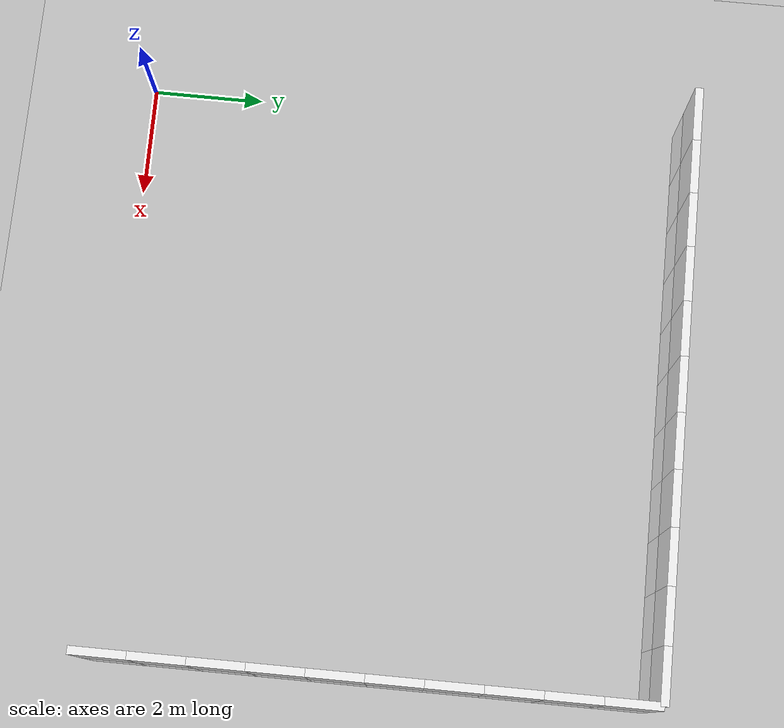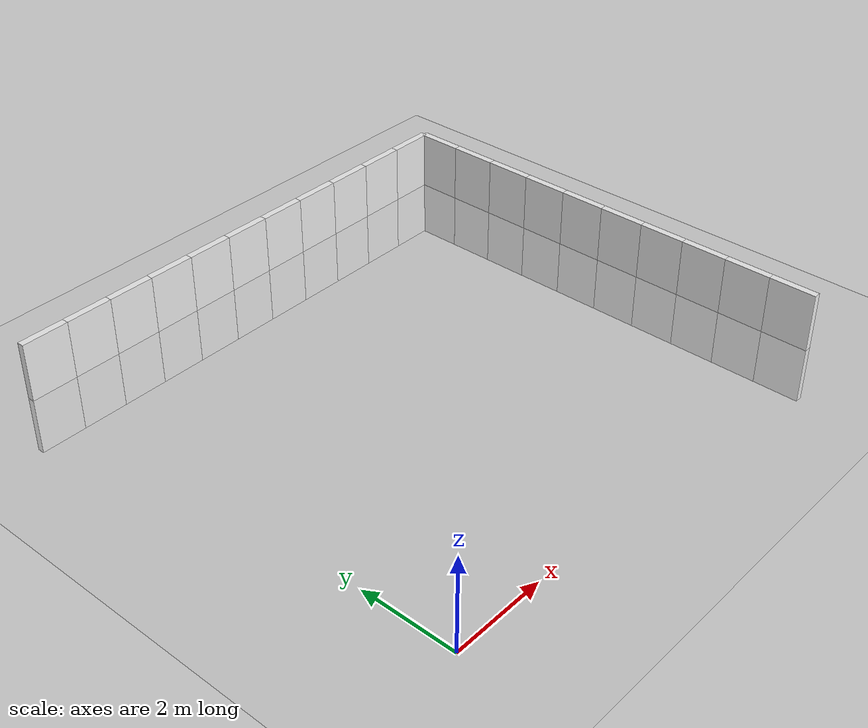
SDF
<sdf version="1.7">
 <world name="default">
  <model name="ground_plane">
   <static>1</static>
   <link name="link">
    <collision name="collision">
     <geometry><plane><normal>0 0 1</normal><size>100 100</size></plane></geometry>
     <surface>
      <contact><collide_bitmask>65535</collide_bitmask></contact>
      <friction><ode><mu>100</mu><mu2>50</mu2></ode></friction>
     </surface>
    </collision>
    <visual name="visual">
     <cast_shadows>0</cast_shadows>
     <geometry><plane><normal>0 0 1</normal><size>100 100</size></plane></geometry>
     <material>
      <script><uri>file://media/materials/scripts/gazebo.material</uri><name>Gazebo/Grey</name></script>
     </material>
    </visual>
   </link>
  </model>
  <model name="wall_left_11">
   <link name="Wall_10">
    <inertial>
     <mass>1</mass>
     <inertia><ixx>1</ixx><ixy>0</ixy><ixz>0</ixz><iyy>1</iyy><iyz>0</iyz><izz>1</izz></inertia>
    </inertial>
    <visual name="Wall_10_Visual_0">
     <geometry><box><size>1 0.15 2.5</size></box></geometry>
     <material>
      <script>
       <uri>model://wall/materials/scripts</uri>
       <uri>model://wall/materials/textures</uri>
       <name>wall_white</name>
      </script>
      <shader type="pixel"><normal_map>__default__</normal_map></shader>
      <ambient>1 1 1 1</ambient>
      <diffuse>1 1 1 1</diffuse>
      <specular>0 0 0 1</specular>
      <emissive>0 0 0 1</emissive>
     </material>
     <meta><layer>0</layer></meta>
    </visual>
    <collision name="Wall_10_Collision_0">
     <geometry><box><size>1 0.15 2.5</size></box></geometry>
     <surface>
      <friction>
       <ode><mu>1</mu><mu2>1</mu2><fdir1>0 0 0</fdir1><slip1>0</slip1><slip2>0</slip2></ode>
       <torsional>
        <coefficient>1</coefficient>
        <patch_radius>0</patch_radius>
        <surface_radius>0</surface_radius>
        <use_patch_radius>1</use_patch_radius>
        <ode><slip>0</slip></ode>
       </torsional>
      </friction>
      <bounce><restitution_coefficient>0</restitution_coefficient><threshold>1e+06</threshold></bounce>
      <contact>
       <collide_without_contact>0</collide_without_contact>
       <collide_without_contact_bitmask>1</collide_without_contact_bitmask>
       <collide_bitmask>1</collide_bitmask>
       <ode>
        <soft_cfm>0</soft_cfm>
        <soft_erp>0.2</soft_erp>
        <kp>1e+13</kp>
        <kd>1</kd>
        <max_vel>0.01</max_vel>
        <min_depth>0</min_depth>
       </ode>
       <bullet>
        <split_impulse>1</split_impulse>
        <split_impulse_penetration_threshold>-0.01</split_impulse_penetration_threshold>
        <soft_cfm>0</soft_cfm>
        <soft_erp>0.2</soft_erp>
        <kp>1e+13</kp>
        <kd>1</kd>
       </bullet>
      </contact>
     </surface>
    </collision>
   </link>
   <static>1</static>
   <pose>0 10 0 0 -0 0</pose>
  </model>
  <model name="wall_left_12">
   <link name="Wall_10">
    <inertial>
     <mass>1</mass>
     <inertia><ixx>1</ixx><ixy>0</ixy><ixz>0</ixz><iyy>1</iyy><iyz>0</iyz><izz>1</izz></inertia>
    </inertial>
    <visual name="Wall_10_Visual_0">
     <geometry><box><size>1 0.15 2.5</size></box></geometry>
     <material>
      <script>
       <uri>model://wall/materials/scripts</uri>
       <uri>model://wall/materials/textures</uri>
       <name>wall_white</name>
      </script>
      <shader type="pixel"><normal_map>__default__</normal_map></shader>
      <ambient>1 1 1 1</ambient>
      <diffuse>1 1 1 1</diffuse>
      <specular>0 0 0 1</specular>
      <emissive>0 0 0 1</emissive>
     </material>
     <meta><layer>0</layer></meta>
    </visual>
    <collision name="Wall_10_Collision_0">
     <geometry><box><size>1 0.15 2.5</size></box></geometry>
     <surface>
      <friction>
       <ode><mu>1</mu><mu2>1</mu2><fdir1>0 0 0</fdir1><slip1>0</slip1><slip2>0</slip2></ode>
       <torsional>
        <coefficient>1</coefficient>
        <patch_radius>0</patch_radius>
        <surface_radius>0</surface_radius>
        <use_patch_radius>1</use_patch_radius>
        <ode><slip>0</slip></ode>
       </torsional>
      </friction>
      <bounce><restitution_coefficient>0</restitution_coefficient><threshold>1e+06</threshold></bounce>
      <contact>
       <collide_without_contact>0</collide_without_contact>
       <collide_without_contact_bitmask>1</collide_without_contact_bitmask>
       <collide_bitmask>1</collide_bitmask>
       <ode>
        <soft_cfm>0</soft_cfm>
        <soft_erp>0.2</soft_erp>
        <kp>1e+13</kp>
        <kd>1</kd>
        <max_vel>0.01</max_vel>
        <min_depth>0</min_depth>
       </ode>
       <bullet>
        <split_impulse>1</split_impulse>
        <split_impulse_penetration_threshold>-0.01</split_impulse_penetration_threshold>
        <soft_cfm>0</soft_cfm>
        <soft_erp>0.2</soft_erp>
        <kp>1e+13</kp>
        <kd>1</kd>
       </bullet>
      </contact>
     </surface>
    </collision>
   </link>
   <static>1</static>
   <pose>1 10 0 0 -0 0</pose>
  </model>
  <model name="wall_left_13">
   <link name="Wall_10">
    <inertial>
     <mass>1</mass>
     <inertia><ixx>1</ixx><ixy>0</ixy><ixz>0</ixz><iyy>1</iyy><iyz>0</iyz><izz>1</izz></inertia>
    </inertial>
    <visual name="Wall_10_Visual_0">
     <geometry><box><size>1 0.15 2.5</size></box></geometry>
     <material>
      <script>
       <uri>model://wall/materials/scripts</uri>
       <uri>model://wall/materials/textures</uri>
       <name>wall_white</name>
      </script>
      <shader type="pixel"><normal_map>__default__</normal_map></shader>
      <ambient>1 1 1 1</ambient>
      <diffuse>1 1 1 1</diffuse>
      <specular>0 0 0 1</specular>
      <emissive>0 0 0 1</emissive>
     </material>
     <meta><layer>0</layer></meta>
    </visual>
    <collision name="Wall_10_Collision_0">
     <geometry><box><size>1 0.15 2.5</size></box></geometry>
     <surface>
      <friction>
       <ode><mu>1</mu><mu2>1</mu2><fdir1>0 0 0</fdir1><slip1>0</slip1><slip2>0</slip2></ode>
       <torsional>
        <coefficient>1</coefficient>
        <patch_radius>0</patch_radius>
        <surface_radius>0</surface_radius>
        <use_patch_radius>1</use_patch_radius>
        <ode><slip>0</slip></ode>
       </torsional>
      </friction>
      <bounce><restitution_coefficient>0</restitution_coefficient><threshold>1e+06</threshold></bounce>
      <contact>
       <collide_without_contact>0</collide_without_contact>
       <collide_without_contact_bitmask>1</collide_without_contact_bitmask>
       <collide_bitmask>1</collide_bitmask>
       <ode>
        <soft_cfm>0</soft_cfm>
        <soft_erp>0.2</soft_erp>
        <kp>1e+13</kp>
        <kd>1</kd>
        <max_vel>0.01</max_vel>
        <min_depth>0</min_depth>
       </ode>
       <bullet>
        <split_impulse>1</split_impulse>
        <split_impulse_penetration_threshold>-0.01</split_impulse_penetration_threshold>
        <soft_cfm>0</soft_cfm>
        <soft_erp>0.2</soft_erp>
        <kp>1e+13</kp>
        <kd>1</kd>
       </bullet>
      </contact>
     </surface>
    </collision>
   </link>
   <static>1</static>
   <pose>2 10 0 0 -0 0</pose>
  </model>
  <model name="wall_left_14">
   <link name="Wall_10">
    <inertial>
     <mass>1</mass>
     <inertia><ixx>1</ixx><ixy>0</ixy><ixz>0</ixz><iyy>1</iyy><iyz>0</iyz><izz>1</izz></inertia>
    </inertial>
    <visual name="Wall_10_Visual_0">
     <geometry><box><size>1 0.15 2.5</size></box></geometry>
     <material>
      <script>
       <uri>model://wall/materials/scripts</uri>
       <uri>model://wall/materials/textures</uri>
       <name>wall_white</name>
      </script>
      <shader type="pixel"><normal_map>__default__</normal_map></shader>
      <ambient>1 1 1 1</ambient>
      <diffuse>1 1 1 1</diffuse>
      <specular>0 0 0 1</specular>
      <emissive>0 0 0 1</emissive>
     </material>
     <meta><layer>0</layer></meta>
    </visual>
    <collision name="Wall_10_Collision_0">
     <geometry><box><size>1 0.15 2.5</size></box></geometry>
     <surface>
      <friction>
       <ode><mu>1</mu><mu2>1</mu2><fdir1>0 0 0</fdir1><slip1>0</slip1><slip2>0</slip2></ode>
       <torsional>
        <coefficient>1</coefficient>
        <patch_radius>0</patch_radius>
        <surface_radius>0</surface_radius>
        <use_patch_radius>1</use_patch_radius>
        <ode><slip>0</slip></ode>
       </torsional>
      </friction>
      <bounce><restitution_coefficient>0</restitution_coefficient><threshold>1e+06</threshold></bounce>
      <contact>
       <collide_without_contact>0</collide_without_contact>
       <collide_without_contact_bitmask>1</collide_without_contact_bitmask>
       <collide_bitmask>1</collide_bitmask>
       <ode>
        <soft_cfm>0</soft_cfm>
        <soft_erp>0.2</soft_erp>
        <kp>1e+13</kp>
        <kd>1</kd>
        <max_vel>0.01</max_vel>
        <min_depth>0</min_depth>
       </ode>
       <bullet>
        <split_impulse>1</split_impulse>
        <split_impulse_penetration_threshold>-0.01</split_impulse_penetration_threshold>
        <soft_cfm>0</soft_cfm>
        <soft_erp>0.2</soft_erp>
        <kp>1e+13</kp>
        <kd>1</kd>
       </bullet>
      </contact>
     </surface>
    </collision>
   </link>
   <static>1</static>
   <pose>3 10 0 0 -0 0</pose>
  </model>
  <model name="wall_left_15">
   <link name="Wall_10">
    <inertial>
     <mass>1</mass>
     <inertia><ixx>1</ixx><ixy>0</ixy><ixz>0</ixz><iyy>1</iyy><iyz>0</iyz><izz>1</izz></inertia>
    </inertial>
    <visual name="Wall_10_Visual_0">
     <geometry><box><size>1 0.15 2.5</size></box></geometry>
     <material>
      <script>
       <uri>model://wall/materials/scripts</uri>
       <uri>model://wall/materials/textures</uri>
       <name>wall_white</name>
      </script>
      <shader type="pixel"><normal_map>__default__</normal_map></shader>
      <ambient>1 1 1 1</ambient>
      <diffuse>1 1 1 1</diffuse>
      <specular>0 0 0 1</specular>
      <emissive>0 0 0 1</emissive>
     </material>
     <meta><layer>0</layer></meta>
    </visual>
    <collision name="Wall_10_Collision_0">
     <geometry><box><size>1 0.15 2.5</size></box></geometry>
     <surface>
      <friction>
       <ode><mu>1</mu><mu2>1</mu2><fdir1>0 0 0</fdir1><slip1>0</slip1><slip2>0</slip2></ode>
       <torsional>
        <coefficient>1</coefficient>
        <patch_radius>0</patch_radius>
        <surface_radius>0</surface_radius>
        <use_patch_radius>1</use_patch_radius>
        <ode><slip>0</slip></ode>
       </torsional>
      </friction>
      <bounce><restitution_coefficient>0</restitution_coefficient><threshold>1e+06</threshold></bounce>
      <contact>
       <collide_without_contact>0</collide_without_contact>
       <collide_without_contact_bitmask>1</collide_without_contact_bitmask>
       <collide_bitmask>1</collide_bitmask>
       <ode>
        <soft_cfm>0</soft_cfm>
        <soft_erp>0.2</soft_erp>
        <kp>1e+13</kp>
        <kd>1</kd>
        <max_vel>0.01</max_vel>
        <min_depth>0</min_depth>
       </ode>
       <bullet>
        <split_impulse>1</split_impulse>
        <split_impulse_penetration_threshold>-0.01</split_impulse_penetration_threshold>
        <soft_cfm>0</soft_cfm>
        <soft_erp>0.2</soft_erp>
        <kp>1e+13</kp>
        <kd>1</kd>
       </bullet>
      </contact>
     </surface>
    </collision>
   </link>
   <static>1</static>
   <pose>4 10 0 0 -0 0</pose>
  </model>
  <model name="wall_left_16">
   <link name="Wall_10">
    <inertial>
     <mass>1</mass>
     <inertia><ixx>1</ixx><ixy>0</ixy><ixz>0</ixz><iyy>1</iyy><iyz>0</iyz><izz>1</izz></inertia>
    </inertial>
    <visual name="Wall_10_Visual_0">
     <geometry><box><size>1 0.15 2.5</size></box></geometry>
     <material>
      <script>
       <uri>model://wall/materials/scripts</uri>
       <uri>model://wall/materials/textures</uri>
       <name>wall_white</name>
      </script>
      <shader type="pixel"><normal_map>__default__</normal_map></shader>
      <ambient>1 1 1 1</ambient>
      <diffuse>1 1 1 1</diffuse>
      <specular>0 0 0 1</specular>
      <emissive>0 0 0 1</emissive>
     </material>
     <meta><layer>0</layer></meta>
    </visual>
    <collision name="Wall_10_Collision_0">
     <geometry><box><size>1 0.15 2.5</size></box></geometry>
     <surface>
      <friction>
       <ode><mu>1</mu><mu2>1</mu2><fdir1>0 0 0</fdir1><slip1>0</slip1><slip2>0</slip2></ode>
       <torsional>
        <coefficient>1</coefficient>
        <patch_radius>0</patch_radius>
        <surface_radius>0</surface_radius>
        <use_patch_radius>1</use_patch_radius>
        <ode><slip>0</slip></ode>
       </torsional>
      </friction>
      <bounce><restitution_coefficient>0</restitution_coefficient><threshold>1e+06</threshold></bounce>
      <contact>
       <collide_without_contact>0</collide_without_contact>
       <collide_without_contact_bitmask>1</collide_without_contact_bitmask>
       <collide_bitmask>1</collide_bitmask>
       <ode>
        <soft_cfm>0</soft_cfm>
        <soft_erp>0.2</soft_erp>
        <kp>1e+13</kp>
        <kd>1</kd>
        <max_vel>0.01</max_vel>
        <min_depth>0</min_depth>
       </ode>
       <bullet>
        <split_impulse>1</split_impulse>
        <split_impulse_penetration_threshold>-0.01</split_impulse_penetration_threshold>
        <soft_cfm>0</soft_cfm>
        <soft_erp>0.2</soft_erp>
        <kp>1e+13</kp>
        <kd>1</kd>
       </bullet>
      </contact>
     </surface>
    </collision>
   </link>
   <static>1</static>
   <pose>5 10 0 0 -0 0</pose>
  </model>
  <model name="wall_left_17">
   <link name="Wall_10">
    <inertial>
     <mass>1</mass>
     <inertia><ixx>1</ixx><ixy>0</ixy><ixz>0</ixz><iyy>1</iyy><iyz>0</iyz><izz>1</izz></inertia>
    </inertial>
    <visual name="Wall_10_Visual_0">
     <geometry><box><size>1 0.15 2.5</size></box></geometry>
     <material>
      <script>
       <uri>model://wall/materials/scripts</uri>
       <uri>model://wall/materials/textures</uri>
       <name>wall_white</name>
      </script>
      <shader type="pixel"><normal_map>__default__</normal_map></shader>
      <ambient>1 1 1 1</ambient>
      <diffuse>1 1 1 1</diffuse>
      <specular>0 0 0 1</specular>
      <emissive>0 0 0 1</emissive>
     </material>
     <meta><layer>0</layer></meta>
    </visual>
    <collision name="Wall_10_Collision_0">
     <geometry><box><size>1 0.15 2.5</size></box></geometry>
     <surface>
      <friction>
       <ode><mu>1</mu><mu2>1</mu2><fdir1>0 0 0</fdir1><slip1>0</slip1><slip2>0</slip2></ode>
       <torsional>
        <coefficient>1</coefficient>
        <patch_radius>0</patch_radius>
        <surface_radius>0</surface_radius>
        <use_patch_radius>1</use_patch_radius>
        <ode><slip>0</slip></ode>
       </torsional>
      </friction>
      <bounce><restitution_coefficient>0</restitution_coefficient><threshold>1e+06</threshold></bounce>
      <contact>
       <collide_without_contact>0</collide_without_contact>
       <collide_without_contact_bitmask>1</collide_without_contact_bitmask>
       <collide_bitmask>1</collide_bitmask>
       <ode>
        <soft_cfm>0</soft_cfm>
        <soft_erp>0.2</soft_erp>
        <kp>1e+13</kp>
        <kd>1</kd>
        <max_vel>0.01</max_vel>
        <min_depth>0</min_depth>
       </ode>
       <bullet>
        <split_impulse>1</split_impulse>
        <split_impulse_penetration_threshold>-0.01</split_impulse_penetration_threshold>
        <soft_cfm>0</soft_cfm>
        <soft_erp>0.2</soft_erp>
        <kp>1e+13</kp>
        <kd>1</kd>
       </bullet>
      </contact>
     </surface>
    </collision>
   </link>
   <static>1</static>
   <pose>6 10 0 0 -0 0</pose>
  </model>
  <model name="wall_left_18">
   <link name="Wall_10">
    <inertial>
     <mass>1</mass>
     <inertia><ixx>1</ixx><ixy>0</ixy><ixz>0</ixz><iyy>1</iyy><iyz>0</iyz><izz>1</izz></inertia>
    </inertial>
    <visual name="Wall_10_Visual_0">
     <geometry><box><size>1 0.15 2.5</size></box></geometry>
     <material>
      <script>
       <uri>model://wall/materials/scripts</uri>
       <uri>model://wall/materials/textures</uri>
       <name>wall_white</name>
      </script>
      <shader type="pixel"><normal_map>__default__</normal_map></shader>
      <ambient>1 1 1 1</ambient>
      <diffuse>1 1 1 1</diffuse>
      <specular>0 0 0 1</specular>
      <emissive>0 0 0 1</emissive>
     </material>
     <meta><layer>0</layer></meta>
    </visual>
    <collision name="Wall_10_Collision_0">
     <geometry><box><size>1 0.15 2.5</size></box></geometry>
     <surface>
      <friction>
       <ode><mu>1</mu><mu2>1</mu2><fdir1>0 0 0</fdir1><slip1>0</slip1><slip2>0</slip2></ode>
       <torsional>
        <coefficient>1</coefficient>
        <patch_radius>0</patch_radius>
        <surface_radius>0</surface_radius>
        <use_patch_radius>1</use_patch_radius>
        <ode><slip>0</slip></ode>
       </torsional>
      </friction>
      <bounce><restitution_coefficient>0</restitution_coefficient><threshold>1e+06</threshold></bounce>
      <contact>
       <collide_without_contact>0</collide_without_contact>
       <collide_without_contact_bitmask>1</collide_without_contact_bitmask>
       <collide_bitmask>1</collide_bitmask>
       <ode>
        <soft_cfm>0</soft_cfm>
        <soft_erp>0.2</soft_erp>
        <kp>1e+13</kp>
        <kd>1</kd>
        <max_vel>0.01</max_vel>
        <min_depth>0</min_depth>
       </ode>
       <bullet>
        <split_impulse>1</split_impulse>
        <split_impulse_penetration_threshold>-0.01</split_impulse_penetration_threshold>
        <soft_cfm>0</soft_cfm>
        <soft_erp>0.2</soft_erp>
        <kp>1e+13</kp>
        <kd>1</kd>
       </bullet>
      </contact>
     </surface>
    </collision>
   </link>
   <static>1</static>
   <pose>7 10 0 0 -0 0</pose>
  </model>
  <model name="wall_left_19">
   <link name="Wall_10">
    <inertial>
     <mass>1</mass>
     <inertia><ixx>1</ixx><ixy>0</ixy><ixz>0</ixz><iyy>1</iyy><iyz>0</iyz><izz>1</izz></inertia>
    </inertial>
    <visual name="Wall_10_Visual_0">
     <geometry><box><size>1 0.15 2.5</size></box></geometry>
     <material>
      <script>
       <uri>model://wall/materials/scripts</uri>
       <uri>model://wall/materials/textures</uri>
       <name>wall_white</name>
      </script>
      <shader type="pixel"><normal_map>__default__</normal_map></shader>
      <ambient>1 1 1 1</ambient>
      <diffuse>1 1 1 1</diffuse>
      <specular>0 0 0 1</specular>
      <emissive>0 0 0 1</emissive>
     </material>
     <meta><layer>0</layer></meta>
    </visual>
    <collision name="Wall_10_Collision_0">
     <geometry><box><size>1 0.15 2.5</size></box></geometry>
     <surface>
      <friction>
       <ode><mu>1</mu><mu2>1</mu2><fdir1>0 0 0</fdir1><slip1>0</slip1><slip2>0</slip2></ode>
       <torsional>
        <coefficient>1</coefficient>
        <patch_radius>0</patch_radius>
        <surface_radius>0</surface_radius>
        <use_patch_radius>1</use_patch_radius>
        <ode><slip>0</slip></ode>
       </torsional>
      </friction>
      <bounce><restitution_coefficient>0</restitution_coefficient><threshold>1e+06</threshold></bounce>
      <contact>
       <collide_without_contact>0</collide_without_contact>
       <collide_without_contact_bitmask>1</collide_without_contact_bitmask>
       <collide_bitmask>1</collide_bitmask>
       <ode>
        <soft_cfm>0</soft_cfm>
        <soft_erp>0.2</soft_erp>
        <kp>1e+13</kp>
        <kd>1</kd>
        <max_vel>0.01</max_vel>
        <min_depth>0</min_depth>
       </ode>
       <bullet>
        <split_impulse>1</split_impulse>
        <split_impulse_penetration_threshold>-0.01</split_impulse_penetration_threshold>
        <soft_cfm>0</soft_cfm>
        <soft_erp>0.2</soft_erp>
        <kp>1e+13</kp>
        <kd>1</kd>
       </bullet>
      </contact>
     </surface>
    </collision>
   </link>
   <static>1</static>
   <pose>8 10 0 0 -0 0</pose>
  </model>
  <model name="wall_left_20">
   <link name="Wall_10">
    <inertial>
     <mass>1</mass>
     <inertia><ixx>1</ixx><ixy>0</ixy><ixz>0</ixz><iyy>1</iyy><iyz>0</iyz><izz>1</izz></inertia>
    </inertial>
    <visual name="Wall_10_Visual_0">
     <geometry><box><size>1 0.15 2.5</size></box></geometry>
     <material>
      <script>
       <uri>model://wall/materials/scripts</uri>
       <uri>model://wall/materials/textures</uri>
       <name>wall_white</name>
      </script>
      <shader type="pixel"><normal_map>__default__</normal_map></shader>
      <ambient>1 1 1 1</ambient>
      <diffuse>1 1 1 1</diffuse>
      <specular>0 0 0 1</specular>
      <emissive>0 0 0 1</emissive>
     </material>
     <meta><layer>0</layer></meta>
    </visual>
    <collision name="Wall_10_Collision_0">
     <geometry><box><size>1 0.15 2.5</size></box></geometry>
     <surface>
      <friction>
       <ode><mu>1</mu><mu2>1</mu2><fdir1>0 0 0</fdir1><slip1>0</slip1><slip2>0</slip2></ode>
       <torsional>
        <coefficient>1</coefficient>
        <patch_radius>0</patch_radius>
        <surface_radius>0</surface_radius>
        <use_patch_radius>1</use_patch_radius>
        <ode><slip>0</slip></ode>
       </torsional>
      </friction>
      <bounce><restitution_coefficient>0</restitution_coefficient><threshold>1e+06</threshold></bounce>
      <contact>
       <collide_without_contact>0</collide_without_contact>
       <collide_without_contact_bitmask>1</collide_without_contact_bitmask>
       <collide_bitmask>1</collide_bitmask>
       <ode>
        <soft_cfm>0</soft_cfm>
        <soft_erp>0.2</soft_erp>
        <kp>1e+13</kp>
        <kd>1</kd>
        <max_vel>0.01</max_vel>
        <min_depth>0</min_depth>
       </ode>
       <bullet>
        <split_impulse>1</split_impulse>
        <split_impulse_penetration_threshold>-0.01</split_impulse_penetration_threshold>
        <soft_cfm>0</soft_cfm>
        <soft_erp>0.2</soft_erp>
        <kp>1e+13</kp>
        <kd>1</kd>
       </bullet>
      </contact>
     </surface>
    </collision>
   </link>
   <static>1</static>
   <pose>9 10 0 0 -0 0</pose>
  </model>
  <model name="wall_left_21">
   <link name="Wall_10">
    <inertial>
     <mass>1</mass>
     <inertia><ixx>1</ixx><ixy>0</ixy><ixz>0</ixz><iyy>1</iyy><iyz>0</iyz><izz>1</izz></inertia>
    </inertial>
    <visual name="Wall_10_Visual_0">
     <geometry><box><size>1 0.15 2.5</size></box></geometry>
     <material>
      <script>
       <uri>model://wall/materials/scripts</uri>
       <uri>model://wall/materials/textures</uri>
       <name>wall_white</name>
      </script>
      <shader type="pixel"><normal_map>__default__</normal_map></shader>
      <ambient>1 1 1 1</ambient>
      <diffuse>1 1 1 1</diffuse>
      <specular>0 0 0 1</specular>
      <emissive>0 0 0 1</emissive>
     </material>
     <meta><layer>0</layer></meta>
    </visual>
    <collision name="Wall_10_Collision_0">
     <geometry><box><size>1 0.15 2.5</size></box></geometry>
     <surface>
      <friction>
       <ode><mu>1</mu><mu2>1</mu2><fdir1>0 0 0</fdir1><slip1>0</slip1><slip2>0</slip2></ode>
       <torsional>
        <coefficient>1</coefficient>
        <patch_radius>0</patch_radius>
        <surface_radius>0</surface_radius>
        <use_patch_radius>1</use_patch_radius>
        <ode><slip>0</slip></ode>
       </torsional>
      </friction>
      <bounce><restitution_coefficient>0</restitution_coefficient><threshold>1e+06</threshold></bounce>
      <contact>
       <collide_without_contact>0</collide_without_contact>
       <collide_without_contact_bitmask>1</collide_without_contact_bitmask>
       <collide_bitmask>1</collide_bitmask>
       <ode>
        <soft_cfm>0</soft_cfm>
        <soft_erp>0.2</soft_erp>
        <kp>1e+13</kp>
        <kd>1</kd>
        <max_vel>0.01</max_vel>
        <min_depth>0</min_depth>
       </ode>
       <bullet>
        <split_impulse>1</split_impulse>
        <split_impulse_penetration_threshold>-0.01</split_impulse_penetration_threshold>
        <soft_cfm>0</soft_cfm>
        <soft_erp>0.2</soft_erp>
        <kp>1e+13</kp>
        <kd>1</kd>
       </bullet>
      </contact>
     </surface>
    </collision>
   </link>
   <static>1</static>
   <pose>10 10 0 0 -0 0</pose>
  </model>
  <model name="wall_front_01">
   <link name="Wall_10">
    <inertial>
     <mass>1</mass>
     <inertia><ixx>1</ixx><ixy>0</ixy><ixz>0</ixz><iyy>1</iyy><iyz>0</iyz><izz>1</izz></inertia>
    </inertial>
    <visual name="Wall_10_Visual_0">
     <geometry><box><size>1 0.15 2.5</size></box></geometry>
     <material>
      <script>
       <uri>model://wall/materials/scripts</uri>
       <uri>model://wall/materials/textures</uri>
       <name>wall_white</name>
      </script>
      <shader type="pixel"><normal_map>__default__</normal_map></shader>
      <ambient>1 1 1 1</ambient>
      <diffuse>1 1 1 1</diffuse>
      <specular>0 0 0 1</specular>
      <emissive>0 0 0 1</emissive>
     </material>
     <meta><layer>0</layer></meta>
    </visual>
    <collision name="Wall_10_Collision_0">
     <geometry><box><size>1 0.15 2.5</size></box></geometry>
     <surface>
      <friction>
       <ode><mu>1</mu><mu2>1</mu2><fdir1>0 0 0</fdir1><slip1>0</slip1><slip2>0</slip2></ode>
       <torsional>
        <coefficient>1</coefficient>
        <patch_radius>0</patch_radius>
        <surface_radius>0</surface_radius>
        <use_patch_radius>1</use_patch_radius>
        <ode><slip>0</slip></ode>
       </torsional>
      </friction>
      <bounce><restitution_coefficient>0</restitution_coefficient><threshold>1e+06</threshold></bounce>
      <contact>
       <collide_without_contact>0</collide_without_contact>
       <collide_without_contact_bitmask>1</collide_without_contact_bitmask>
       <collide_bitmask>1</collide_bitmask>
       <ode>
        <soft_cfm>0</soft_cfm>
        <soft_erp>0.2</soft_erp>
        <kp>1e+13</kp>
        <kd>1</kd>
        <max_vel>0.01</max_vel>
        <min_depth>0</min_depth>
       </ode>
       <bullet>
        <split_impulse>1</split_impulse>
        <split_impulse_penetration_threshold>-0.01</split_impulse_penetration_threshold>
        <soft_cfm>0</soft_cfm>
        <soft_erp>0.2</soft_erp>
        <kp>1e+13</kp>
        <kd>1</kd>
       </bullet>
      </contact>
     </surface>
    </collision>
   </link>
   <static>1</static>
   <pose>10.5 9.5 0 0 -0 1.57</pose>
  </model>
  <model name="wall_front_02">
   <link name="Wall_10">
    <inertial>
     <mass>1</mass>
     <inertia><ixx>1</ixx><ixy>0</ixy><ixz>0</ixz><iyy>1</iyy><iyz>0</iyz><izz>1</izz></inertia>
    </inertial>
    <visual name="Wall_10_Visual_0">
     <geometry><box><size>1 0.15 2.5</size></box></geometry>
     <material>
      <script>
       <uri>model://wall/materials/scripts</uri>
       <uri>model://wall/materials/textures</uri>
       <name>wall_white</name>
      </script>
      <shader type="pixel"><normal_map>__default__</normal_map></shader>
      <ambient>1 1 1 1</ambient>
      <diffuse>1 1 1 1</diffuse>
      <specular>0 0 0 1</specular>
      <emissive>0 0 0 1</emissive>
     </material>
     <meta><layer>0</layer></meta>
    </visual>
    <collision name="Wall_10_Collision_0">
     <geometry><box><size>1 0.15 2.5</size></box></geometry>
     <surface>
      <friction>
       <ode><mu>1</mu><mu2>1</mu2><fdir1>0 0 0</fdir1><slip1>0</slip1><slip2>0</slip2></ode>
       <torsional>
        <coefficient>1</coefficient>
        <patch_radius>0</patch_radius>
        <surface_radius>0</surface_radius>
        <use_patch_radius>1</use_patch_radius>
        <ode><slip>0</slip></ode>
       </torsional>
      </friction>
      <bounce><restitution_coefficient>0</restitution_coefficient><threshold>1e+06</threshold></bounce>
      <contact>
       <collide_without_contact>0</collide_without_contact>
       <collide_without_contact_bitmask>1</collide_without_contact_bitmask>
       <collide_bitmask>1</collide_bitmask>
       <ode>
        <soft_cfm>0</soft_cfm>
        <soft_erp>0.2</soft_erp>
        <kp>1e+13</kp>
        <kd>1</kd>
        <max_vel>0.01</max_vel>
        <min_depth>0</min_depth>
       </ode>
       <bullet>
        <split_impulse>1</split_impulse>
        <split_impulse_penetration_threshold>-0.01</split_impulse_penetration_threshold>
        <soft_cfm>0</soft_cfm>
        <soft_erp>0.2</soft_erp>
        <kp>1e+13</kp>
        <kd>1</kd>
       </bullet>
      </contact>
     </surface>
    </collision>
   </link>
   <static>1</static>
   <pose>10.5 8.5 0 0 -0 1.57</pose>
  </model>
  <model name="wall_front_03">
   <link name="Wall_10">
    <inertial>
     <mass>1</mass>
     <inertia><ixx>1</ixx><ixy>0</ixy><ixz>0</ixz><iyy>1</iyy><iyz>0</iyz><izz>1</izz></inertia>
    </inertial>
    <visual name="Wall_10_Visual_0">
     <geometry><box><size>1 0.15 2.5</size></box></geometry>
     <material>
      <script>
       <uri>model://wall/materials/scripts</uri>
       <uri>model://wall/materials/textures</uri>
       <name>wall_white</name>
      </script>
      <shader type="pixel"><normal_map>__default__</normal_map></shader>
      <ambient>1 1 1 1</ambient>
      <diffuse>1 1 1 1</diffuse>
      <specular>0 0 0 1</specular>
      <emissive>0 0 0 1</emissive>
     </material>
     <meta><layer>0</layer></meta>
    </visual>
    <collision name="Wall_10_Collision_0">
     <geometry><box><size>1 0.15 2.5</size></box></geometry>
     <surface>
      <friction>
       <ode><mu>1</mu><mu2>1</mu2><fdir1>0 0 0</fdir1><slip1>0</slip1><slip2>0</slip2></ode>
       <torsional>
        <coefficient>1</coefficient>
        <patch_radius>0</patch_radius>
        <surface_radius>0</surface_radius>
        <use_patch_radius>1</use_patch_radius>
        <ode><slip>0</slip></ode>
       </torsional>
      </friction>
      <bounce><restitution_coefficient>0</restitution_coefficient><threshold>1e+06</threshold></bounce>
      <contact>
       <collide_without_contact>0</collide_without_contact>
       <collide_without_contact_bitmask>1</collide_without_contact_bitmask>
       <collide_bitmask>1</collide_bitmask>
       <ode>
        <soft_cfm>0</soft_cfm>
        <soft_erp>0.2</soft_erp>
        <kp>1e+13</kp>
        <kd>1</kd>
        <max_vel>0.01</max_vel>
        <min_depth>0</min_depth>
       </ode>
       <bullet>
        <split_impulse>1</split_impulse>
        <split_impulse_penetration_threshold>-0.01</split_impulse_penetration_threshold>
        <soft_cfm>0</soft_cfm>
        <soft_erp>0.2</soft_erp>
        <kp>1e+13</kp>
        <kd>1</kd>
       </bullet>
      </contact>
     </surface>
    </collision>
   </link>
   <static>1</static>
   <pose>10.5 7.5 0 0 -0 1.57</pose>
  </model>
  <model name="wall_front_04">
   <link name="Wall_10">
    <inertial>
     <mass>1</mass>
     <inertia><ixx>1</ixx><ixy>0</ixy><ixz>0</ixz><iyy>1</iyy><iyz>0</iyz><izz>1</izz></inertia>
    </inertial>
    <visual name="Wall_10_Visual_0">
     <geometry><box><size>1 0.15 2.5</size></box></geometry>
     <material>
      <script>
       <uri>model://wall/materials/scripts</uri>
       <uri>model://wall/materials/textures</uri>
       <name>wall_white</name>
      </script>
      <shader type="pixel"><normal_map>__default__</normal_map></shader>
      <ambient>1 1 1 1</ambient>
      <diffuse>1 1 1 1</diffuse>
      <specular>0 0 0 1</specular>
      <emissive>0 0 0 1</emissive>
     </material>
     <meta><layer>0</layer></meta>
    </visual>
    <collision name="Wall_10_Collision_0">
     <geometry><box><size>1 0.15 2.5</size></box></geometry>
     <surface>
      <friction>
       <ode><mu>1</mu><mu2>1</mu2><fdir1>0 0 0</fdir1><slip1>0</slip1><slip2>0</slip2></ode>
       <torsional>
        <coefficient>1</coefficient>
        <patch_radius>0</patch_radius>
        <surface_radius>0</surface_radius>
        <use_patch_radius>1</use_patch_radius>
        <ode><slip>0</slip></ode>
       </torsional>
      </friction>
      <bounce><restitution_coefficient>0</restitution_coefficient><threshold>1e+06</threshold></bounce>
      <contact>
       <collide_without_contact>0</collide_without_contact>
       <collide_without_contact_bitmask>1</collide_without_contact_bitmask>
       <collide_bitmask>1</collide_bitmask>
       <ode>
        <soft_cfm>0</soft_cfm>
        <soft_erp>0.2</soft_erp>
        <kp>1e+13</kp>
        <kd>1</kd>
        <max_vel>0.01</max_vel>
        <min_depth>0</min_depth>
       </ode>
       <bullet>
        <split_impulse>1</split_impulse>
        <split_impulse_penetration_threshold>-0.01</split_impulse_penetration_threshold>
        <soft_cfm>0</soft_cfm>
        <soft_erp>0.2</soft_erp>
        <kp>1e+13</kp>
        <kd>1</kd>
       </bullet>
      </contact>
     </surface>
    </collision>
   </link>
   <static>1</static>
   <pose>10.5 6.5 0 0 -0 1.57</pose>
  </model>
  <model name="wall_front_05">
   <link name="Wall_10">
    <inertial>
     <mass>1</mass>
     <inertia><ixx>1</ixx><ixy>0</ixy><ixz>0</ixz><iyy>1</iyy><iyz>0</iyz><izz>1</izz></inertia>
    </inertial>
    <visual name="Wall_10_Visual_0">
     <geometry><box><size>1 0.15 2.5</size></box></geometry>
     <material>
      <script>
       <uri>model://wall/materials/scripts</uri>
       <uri>model://wall/materials/textures</uri>
       <name>wall_white</name>
      </script>
      <shader type="pixel"><normal_map>__default__</normal_map></shader>
      <ambient>1 1 1 1</ambient>
      <diffuse>1 1 1 1</diffuse>
      <specular>0 0 0 1</specular>
      <emissive>0 0 0 1</emissive>
     </material>
     <meta><layer>0</layer></meta>
    </visual>
    <collision name="Wall_10_Collision_0">
     <geometry><box><size>1 0.15 2.5</size></box></geometry>
     <surface>
      <friction>
       <ode><mu>1</mu><mu2>1</mu2><fdir1>0 0 0</fdir1><slip1>0</slip1><slip2>0</slip2></ode>
       <torsional>
        <coefficient>1</coefficient>
        <patch_radius>0</patch_radius>
        <surface_radius>0</surface_radius>
        <use_patch_radius>1</use_patch_radius>
        <ode><slip>0</slip></ode>
       </torsional>
      </friction>
      <bounce><restitution_coefficient>0</restitution_coefficient><threshold>1e+06</threshold></bounce>
      <contact>
       <collide_without_contact>0</collide_without_contact>
       <collide_without_contact_bitmask>1</collide_without_contact_bitmask>
       <collide_bitmask>1</collide_bitmask>
       <ode>
        <soft_cfm>0</soft_cfm>
        <soft_erp>0.2</soft_erp>
        <kp>1e+13</kp>
        <kd>1</kd>
        <max_vel>0.01</max_vel>
        <min_depth>0</min_depth>
       </ode>
       <bullet>
        <split_impulse>1</split_impulse>
        <split_impulse_penetration_threshold>-0.01</split_impulse_penetration_threshold>
        <soft_cfm>0</soft_cfm>
        <soft_erp>0.2</soft_erp>
        <kp>1e+13</kp>
        <kd>1</kd>
       </bullet>
      </contact>
     </surface>
    </collision>
   </link>
   <static>1</static>
   <pose>10.5 5.5 0 0 -0 1.57</pose>
  </model>
  <model name="wall_front_06">
   <link name="Wall_10">
    <inertial>
     <mass>1</mass>
     <inertia><ixx>1</ixx><ixy>0</ixy><ixz>0</ixz><iyy>1</iyy><iyz>0</iyz><izz>1</izz></inertia>
    </inertial>
    <visual name="Wall_10_Visual_0">
     <geometry><box><size>1 0.15 2.5</size></box></geometry>
     <material>
      <script>
       <uri>model://wall/materials/scripts</uri>
       <uri>model://wall/materials/textures</uri>
       <name>wall_white</name>
      </script>
      <shader type="pixel"><normal_map>__default__</normal_map></shader>
      <ambient>1 1 1 1</ambient>
      <diffuse>1 1 1 1</diffuse>
      <specular>0 0 0 1</specular>
      <emissive>0 0 0 1</emissive>
     </material>
     <meta><layer>0</layer></meta>
    </visual>
    <collision name="Wall_10_Collision_0">
     <geometry><box><size>1 0.15 2.5</size></box></geometry>
     <surface>
      <friction>
       <ode><mu>1</mu><mu2>1</mu2><fdir1>0 0 0</fdir1><slip1>0</slip1><slip2>0</slip2></ode>
       <torsional>
        <coefficient>1</coefficient>
        <patch_radius>0</patch_radius>
        <surface_radius>0</surface_radius>
        <use_patch_radius>1</use_patch_radius>
        <ode><slip>0</slip></ode>
       </torsional>
      </friction>
      <bounce><restitution_coefficient>0</restitution_coefficient><threshold>1e+06</threshold></bounce>
      <contact>
       <collide_without_contact>0</collide_without_contact>
       <collide_without_contact_bitmask>1</collide_without_contact_bitmask>
       <collide_bitmask>1</collide_bitmask>
       <ode>
        <soft_cfm>0</soft_cfm>
        <soft_erp>0.2</soft_erp>
        <kp>1e+13</kp>
        <kd>1</kd>
        <max_vel>0.01</max_vel>
        <min_depth>0</min_depth>
       </ode>
       <bullet>
        <split_impulse>1</split_impulse>
        <split_impulse_penetration_threshold>-0.01</split_impulse_penetration_threshold>
        <soft_cfm>0</soft_cfm>
        <soft_erp>0.2</soft_erp>
        <kp>1e+13</kp>
        <kd>1</kd>
       </bullet>
      </contact>
     </surface>
    </collision>
   </link>
   <static>1</static>
   <pose>10.5 4.5 0 0 -0 1.57</pose>
  </model>
  <model name="wall_front_07">
   <link name="Wall_10">
    <inertial>
     <mass>1</mass>
     <inertia><ixx>1</ixx><ixy>0</ixy><ixz>0</ixz><iyy>1</iyy><iyz>0</iyz><izz>1</izz></inertia>
    </inertial>
    <visual name="Wall_10_Visual_0">
     <geometry><box><size>1 0.15 2.5</size></box></geometry>
     <material>
      <script>
       <uri>model://wall/materials/scripts</uri>
       <uri>model://wall/materials/textures</uri>
       <name>wall_white</name>
      </script>
      <shader type="pixel"><normal_map>__default__</normal_map></shader>
      <ambient>1 1 1 1</ambient>
      <diffuse>1 1 1 1</diffuse>
      <specular>0 0 0 1</specular>
      <emissive>0 0 0 1</emissive>
     </material>
     <meta><layer>0</layer></meta>
    </visual>
    <collision name="Wall_10_Collision_0">
     <geometry><box><size>1 0.15 2.5</size></box></geometry>
     <surface>
      <friction>
       <ode><mu>1</mu><mu2>1</mu2><fdir1>0 0 0</fdir1><slip1>0</slip1><slip2>0</slip2></ode>
       <torsional>
        <coefficient>1</coefficient>
        <patch_radius>0</patch_radius>
        <surface_radius>0</surface_radius>
        <use_patch_radius>1</use_patch_radius>
        <ode><slip>0</slip></ode>
       </torsional>
      </friction>
      <bounce><restitution_coefficient>0</restitution_coefficient><threshold>1e+06</threshold></bounce>
      <contact>
       <collide_without_contact>0</collide_without_contact>
       <collide_without_contact_bitmask>1</collide_without_contact_bitmask>
       <collide_bitmask>1</collide_bitmask>
       <ode>
        <soft_cfm>0</soft_cfm>
        <soft_erp>0.2</soft_erp>
        <kp>1e+13</kp>
        <kd>1</kd>
        <max_vel>0.01</max_vel>
        <min_depth>0</min_depth>
       </ode>
       <bullet>
        <split_impulse>1</split_impulse>
        <split_impulse_penetration_threshold>-0.01</split_impulse_penetration_threshold>
        <soft_cfm>0</soft_cfm>
        <soft_erp>0.2</soft_erp>
        <kp>1e+13</kp>
        <kd>1</kd>
       </bullet>
      </contact>
     </surface>
    </collision>
   </link>
   <static>1</static>
   <pose>10.5 3.5 0 0 -0 1.57</pose>
  </model>
  <model name="wall_front_08">
   <link name="Wall_10">
    <inertial>
     <mass>1</mass>
     <inertia><ixx>1</ixx><ixy>0</ixy><ixz>0</ixz><iyy>1</iyy><iyz>0</iyz><izz>1</izz></inertia>
    </inertial>
    <visual name="Wall_10_Visual_0">
     <geometry><box><size>1 0.15 2.5</size></box></geometry>
     <material>
      <script>
       <uri>model://wall/materials/scripts</uri>
       <uri>model://wall/materials/textures</uri>
       <name>wall_white</name>
      </script>
      <shader type="pixel"><normal_map>__default__</normal_map></shader>
      <ambient>1 1 1 1</ambient>
      <diffuse>1 1 1 1</diffuse>
      <specular>0 0 0 1</specular>
      <emissive>0 0 0 1</emissive>
     </material>
     <meta><layer>0</layer></meta>
    </visual>
    <collision name="Wall_10_Collision_0">
     <geometry><box><size>1 0.15 2.5</size></box></geometry>
     <surface>
      <friction>
       <ode><mu>1</mu><mu2>1</mu2><fdir1>0 0 0</fdir1><slip1>0</slip1><slip2>0</slip2></ode>
       <torsional>
        <coefficient>1</coefficient>
        <patch_radius>0</patch_radius>
        <surface_radius>0</surface_radius>
        <use_patch_radius>1</use_patch_radius>
        <ode><slip>0</slip></ode>
       </torsional>
      </friction>
      <bounce><restitution_coefficient>0</restitution_coefficient><threshold>1e+06</threshold></bounce>
      <contact>
       <collide_without_contact>0</collide_without_contact>
       <collide_without_contact_bitmask>1</collide_without_contact_bitmask>
       <collide_bitmask>1</collide_bitmask>
       <ode>
        <soft_cfm>0</soft_cfm>
        <soft_erp>0.2</soft_erp>
        <kp>1e+13</kp>
        <kd>1</kd>
        <max_vel>0.01</max_vel>
        <min_depth>0</min_depth>
       </ode>
       <bullet>
        <split_impulse>1</split_impulse>
        <split_impulse_penetration_threshold>-0.01</split_impulse_penetration_threshold>
        <soft_cfm>0</soft_cfm>
        <soft_erp>0.2</soft_erp>
        <kp>1e+13</kp>
        <kd>1</kd>
       </bullet>
      </contact>
     </surface>
    </collision>
   </link>
   <static>1</static>
   <pose>10.5 2.5 0 0 -0 1.57</pose>
  </model>
  <model name="wall_front_09">
   <link name="Wall_10">
    <inertial>
     <mass>1</mass>
     <inertia><ixx>1</ixx><ixy>0</ixy><ixz>0</ixz><iyy>1</iyy><iyz>0</iyz><izz>1</izz></inertia>
    </inertial>
    <visual name="Wall_10_Visual_0">
     <geometry><box><size>1 0.15 2.5</size></box></geometry>
     <material>
      <script>
       <uri>model://wall/materials/scripts</uri>
       <uri>model://wall/materials/textures</uri>
       <name>wall_white</name>
      </script>
      <shader type="pixel"><normal_map>__default__</normal_map></shader>
      <ambient>1 1 1 1</ambient>
      <diffuse>1 1 1 1</diffuse>
      <specular>0 0 0 1</specular>
      <emissive>0 0 0 1</emissive>
     </material>
     <meta><layer>0</layer></meta>
    </visual>
    <collision name="Wall_10_Collision_0">
     <geometry><box><size>1 0.15 2.5</size></box></geometry>
     <surface>
      <friction>
       <ode><mu>1</mu><mu2>1</mu2><fdir1>0 0 0</fdir1><slip1>0</slip1><slip2>0</slip2></ode>
       <torsional>
        <coefficient>1</coefficient>
        <patch_radius>0</patch_radius>
        <surface_radius>0</surface_radius>
        <use_patch_radius>1</use_patch_radius>
        <ode><slip>0</slip></ode>
       </torsional>
      </friction>
      <bounce><restitution_coefficient>0</restitution_coefficient><threshold>1e+06</threshold></bounce>
      <contact>
       <collide_without_contact>0</collide_without_contact>
       <collide_without_contact_bitmask>1</collide_without_contact_bitmask>
       <collide_bitmask>1</collide_bitmask>
       <ode>
        <soft_cfm>0</soft_cfm>
        <soft_erp>0.2</soft_erp>
        <kp>1e+13</kp>
        <kd>1</kd>
        <max_vel>0.01</max_vel>
        <min_depth>0</min_depth>
       </ode>
       <bullet>
        <split_impulse>1</split_impulse>
        <split_impulse_penetration_threshold>-0.01</split_impulse_penetration_threshold>
        <soft_cfm>0</soft_cfm>
        <soft_erp>0.2</soft_erp>
        <kp>1e+13</kp>
        <kd>1</kd>
       </bullet>
      </contact>
     </surface>
    </collision>
   </link>
   <static>1</static>
   <pose>10.5 1.5 0 0 -0 1.57</pose>
  </model>
  <model name="wall_front_10">
   <link name="Wall_10">
    <inertial>
     <mass>1</mass>
     <inertia><ixx>1</ixx><ixy>0</ixy><ixz>0</ixz><iyy>1</iyy><iyz>0</iyz><izz>1</izz></inertia>
    </inertial>
    <visual name="Wall_10_Visual_0">
     <geometry><box><size>1 0.15 2.5</size></box></geometry>
     <material>
      <script>
       <uri>model://wall/materials/scripts</uri>
       <uri>model://wall/materials/textures</uri>
       <name>wall_white</name>
      </script>
      <shader type="pixel"><normal_map>__default__</normal_map></shader>
      <ambient>1 1 1 1</ambient>
      <diffuse>1 1 1 1</diffuse>
      <specular>0 0 0 1</specular>
      <emissive>0 0 0 1</emissive>
     </material>
     <meta><layer>0</layer></meta>
    </visual>
    <collision name="Wall_10_Collision_0">
     <geometry><box><size>1 0.15 2.5</size></box></geometry>
     <surface>
      <friction>
       <ode><mu>1</mu><mu2>1</mu2><fdir1>0 0 0</fdir1><slip1>0</slip1><slip2>0</slip2></ode>
       <torsional>
        <coefficient>1</coefficient>
        <patch_radius>0</patch_radius>
        <surface_radius>0</surface_radius>
        <use_patch_radius>1</use_patch_radius>
        <ode><slip>0</slip></ode>
       </torsional>
      </friction>
      <bounce><restitution_coefficient>0</restitution_coefficient><threshold>1e+06</threshold></bounce>
      <contact>
       <collide_without_contact>0</collide_without_contact>
       <collide_without_contact_bitmask>1</collide_without_contact_bitmask>
       <collide_bitmask>1</collide_bitmask>
       <ode>
        <soft_cfm>0</soft_cfm>
        <soft_erp>0.2</soft_erp>
        <kp>1e+13</kp>
        <kd>1</kd>
        <max_vel>0.01</max_vel>
        <min_depth>0</min_depth>
       </ode>
       <bullet>
        <split_impulse>1</split_impulse>
        <split_impulse_penetration_threshold>-0.01</split_impulse_penetration_threshold>
        <soft_cfm>0</soft_cfm>
        <soft_erp>0.2</soft_erp>
        <kp>1e+13</kp>
        <kd>1</kd>
       </bullet>
      </contact>
     </surface>
    </collision>
   </link>
   <static>1</static>
   <pose>10.5 0.5 0 0 -0 1.57</pose>
  </model>
 </world>
</sdf>
